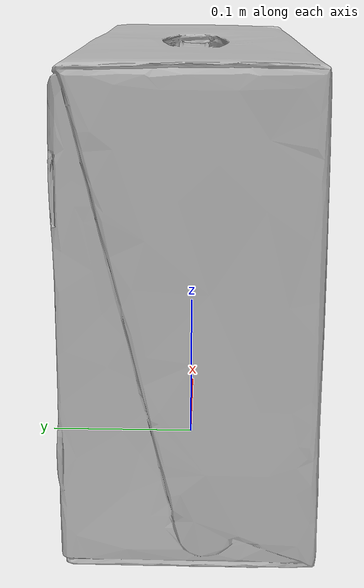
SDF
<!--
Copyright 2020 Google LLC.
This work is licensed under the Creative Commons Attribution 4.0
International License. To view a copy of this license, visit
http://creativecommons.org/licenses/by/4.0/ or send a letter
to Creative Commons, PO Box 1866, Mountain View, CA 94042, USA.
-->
<?xml version="1.0" ?>
<sdf version="1.6">
  <model name="LEGO_Bricks_More_Creative_Suitcase">
    <link name="link_0">
      <visual name="visual">
        <geometry>
          <mesh>
            <uri>meshes/model.obj</uri>
          </mesh>
        </geometry>
      </visual>
      <collision name="collision_0">
        <geometry>
          <mesh>
            <uri>meshes/model.obj</uri>
          </mesh>
        </geometry>
      </collision>
    </link>
  </model>
</sdf>
